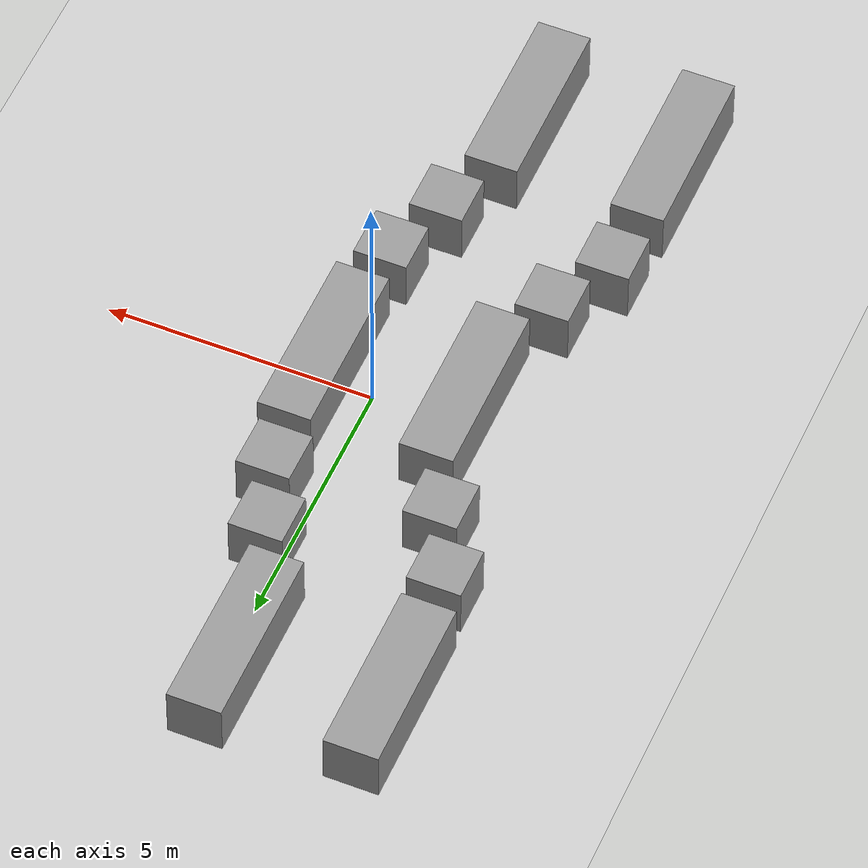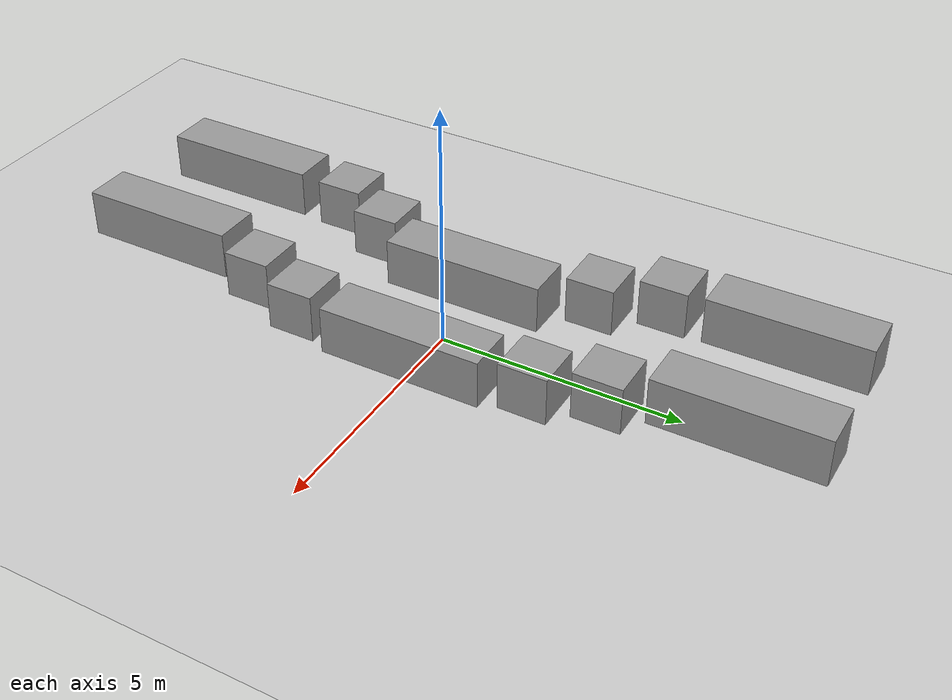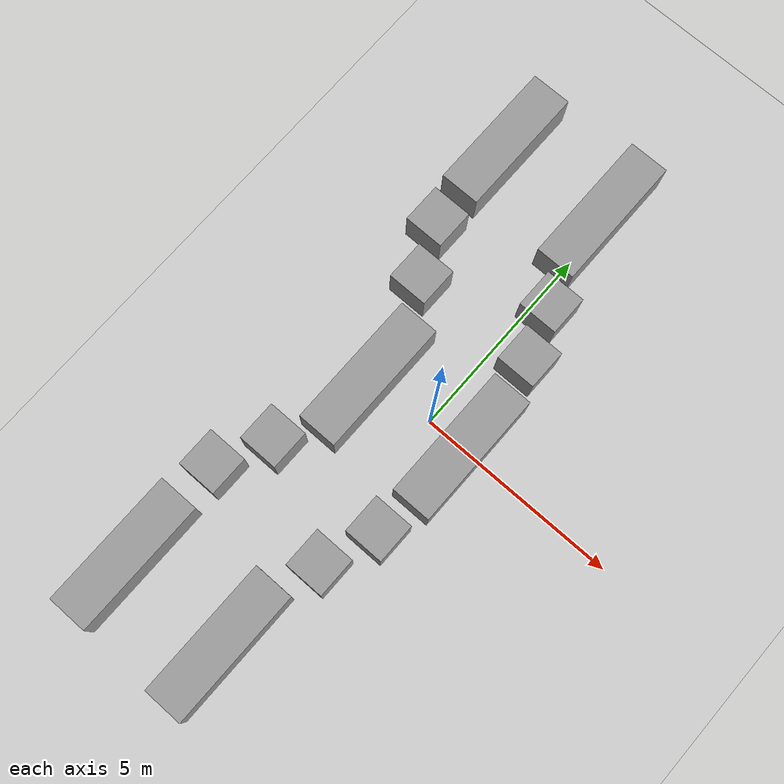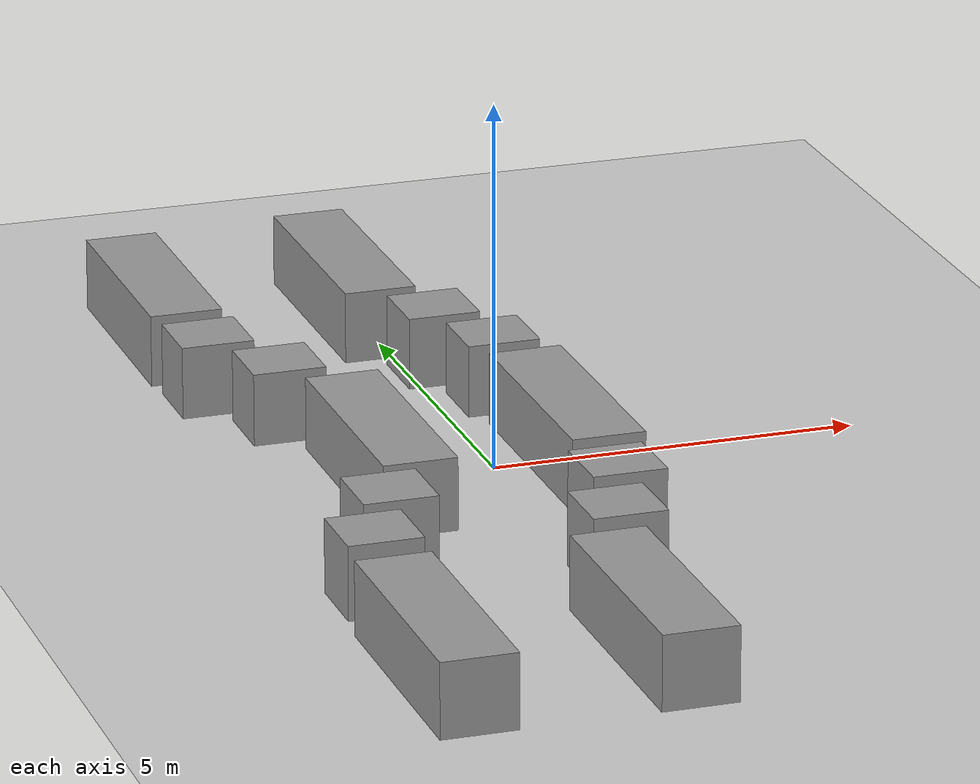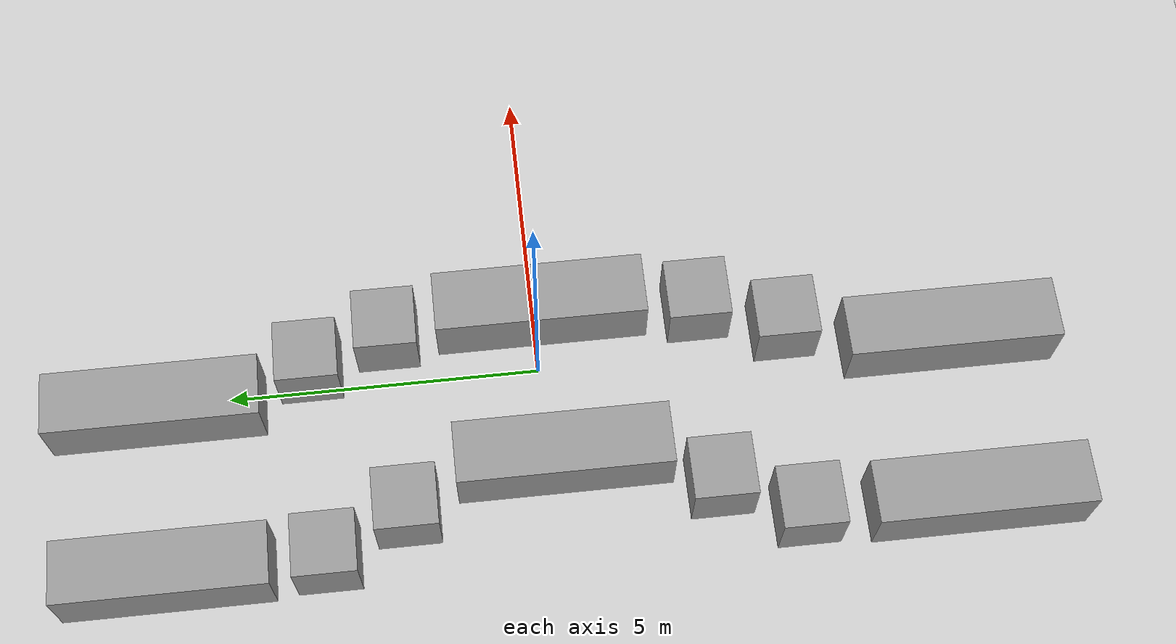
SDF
<sdf version="1.6">
 <world name="default">
  <light name="sun" type="directional">
   <pose>0 0 10 0 -0 0</pose>
   <diffuse>0.8 0.8 0.8 1</diffuse>
   <specular>0.1 0.1 0.1 1</specular>
   <attenuation>
    <range>1000</range>
    <constant>0.9</constant>
    <linear>0.01</linear>
    <quadratic>0.001</quadratic>
   </attenuation>
   <direction>-0.5 0.5 -1</direction>
  </light>
  <model name="ground_plane">
   <static>1</static>
   <link name="link">
    <collision name="collision">
     <geometry><plane><normal>0 0 1</normal><size>100 100</size></plane></geometry>
     <surface><friction><ode><mu>100</mu><mu2>50</mu2></ode></friction></surface>
    </collision>
    <visual name="visual">
     <cast_shadows>0</cast_shadows>
     <geometry><plane><normal>0 0 1</normal><size>100 100</size></plane></geometry>
     <material>
      <script><uri>file://media/materials/scripts/gazebo.material</uri><name>Gazebo/Grey</name></script>
     </material>
    </visual>
   </link>
  </model>
  <gravity>0 0 -1.62</gravity>
  <magnetic_field>6e-06 2.3e-05 -4.2e-05</magnetic_field>
  <atmosphere type="adiabatic"/>
  <physics name="default_physics" default="0" type="ode">
   <max_step_size>0.001</max_step_size>
   <real_time_factor>1</real_time_factor>
   <real_time_update_rate>1000</real_time_update_rate>
  </physics>
  <scene><ambient>0.4 0.4 0.4 1</ambient><background>0.7 0.7 0.7 1</background><shadows>1</shadows></scene>
  <spherical_coordinates>
   <surface_model>EARTH_WGS84</surface_model>
   <latitude_deg>0</latitude_deg>
   <longitude_deg>0</longitude_deg>
   <elevation>0</elevation>
   <heading_deg>0</heading_deg>
  </spherical_coordinates>
  <model name="unit_box_2">
   <pose>-2.2447 2.25959 0.499999 2e-06 -0 0</pose>
   <link name="link">
    <inertial>
     <mass>1</mass>
     <inertia>
      <ixx>0.166667</ixx>
      <ixy>0</ixy>
      <ixz>0</ixz>
      <iyy>0.166667</iyy>
      <iyz>0</iyz>
      <izz>0.166667</izz>
     </inertia>
    </inertial>
    <collision name="collision"><geometry><box><size>1 1 1</size></box></geometry></collision>
    <visual name="visual">
     <geometry><box><size>1 1 1</size></box></geometry>
     <material>
      <script><name>Gazebo/Grey</name><uri>file://media/materials/scripts/gazebo.material</uri></script>
     </material>
    </visual>
   </link>
  </model>
  <model name="unit_box_3">
   <pose>-2.85724 3.53374 0.499999 -2e-06 0 0</pose>
   <link name="link">
    <inertial>
     <mass>1</mass>
     <inertia>
      <ixx>0.166667</ixx>
      <ixy>0</ixy>
      <ixz>0</ixz>
      <iyy>0.166667</iyy>
      <iyz>0</iyz>
      <izz>0.166667</izz>
     </inertia>
    </inertial>
    <collision name="collision"><geometry><box><size>1 1 1</size></box></geometry></collision>
    <visual name="visual">
     <geometry><box><size>1 1 1</size></box></geometry>
     <material>
      <script><name>Gazebo/Grey</name><uri>file://media/materials/scripts/gazebo.material</uri></script>
     </material>
    </visual>
   </link>
  </model>
  <model name="unit_box_6">
   <pose>0.780241 2.39237 0.499999 2e-06 0 -0.004757</pose>
   <link name="link">
    <inertial>
     <mass>1</mass>
     <inertia>
      <ixx>0.166667</ixx>
      <ixy>0</ixy>
      <ixz>0</ixz>
      <iyy>0.166667</iyy>
      <iyz>0</iyz>
      <izz>0.166667</izz>
     </inertia>
    </inertial>
    <collision name="collision"><geometry><box><size>1 1 1</size></box></geometry></collision>
    <visual name="visual">
     <geometry><box><size>1 1 1</size></box></geometry>
     <material>
      <script><name>Gazebo/Grey</name><uri>file://media/materials/scripts/gazebo.material</uri></script>
     </material>
    </visual>
   </link>
  </model>
  <model name="unit_box_7">
   <pose>0.354733 3.666 0.499999 2e-06 -0 0</pose>
   <link name="link">
    <inertial>
     <mass>1</mass>
     <inertia>
      <ixx>0.166667</ixx>
      <ixy>0</ixy>
      <ixz>0</ixz>
      <iyy>0.166667</iyy>
      <iyz>0</iyz>
      <izz>0.166667</izz>
     </inertia>
    </inertial>
    <collision name="collision"><geometry><box><size>1 1 1</size></box></geometry></collision>
    <visual name="visual">
     <geometry><box><size>1 1 1</size></box></geometry>
     <material>
      <script><name>Gazebo/Grey</name><uri>file://media/materials/scripts/gazebo.material</uri></script>
     </material>
    </visual>
   </link>
  </model>
  <model name="unit_box_8_0">
   <pose>-2.91774 6.01669 0.499996 -3e-06 -0 1e-06</pose>
   <link name="link">
    <inertial>
     <mass>1</mass>
     <inertia>
      <ixx>0.166667</ixx>
      <ixy>0</ixy>
      <ixz>0</ixz>
      <iyy>0.166667</iyy>
      <iyz>0</iyz>
      <izz>0.166667</izz>
     </inertia>
    </inertial>
    <collision name="collision"><geometry><box><size>1 3.30522 1</size></box></geometry></collision>
    <visual name="visual">
     <geometry><box><size>1 3.30522 1</size></box></geometry>
     <material>
      <script><name>Gazebo/Grey</name><uri>file://media/materials/scripts/gazebo.material</uri></script>
     </material>
    </visual>
   </link>
  </model>
  <model name="unit_box_8_0_clone">
   <pose>-0.159391 6.1217 0.499995 3e-06 -0 0</pose>
   <link name="link">
    <inertial>
     <mass>1</mass>
     <inertia>
      <ixx>0.166667</ixx>
      <ixy>0</ixy>
      <ixz>0</ixz>
      <iyy>0.166667</iyy>
      <iyz>0</iyz>
      <izz>0.166667</izz>
     </inertia>
    </inertial>
    <collision name="collision"><geometry><box><size>1 3.40701 1</size></box></geometry></collision>
    <visual name="visual">
     <geometry><box><size>1 3.40701 1</size></box></geometry>
     <material>
      <script><name>Gazebo/Grey</name><uri>file://media/materials/scripts/gazebo.material</uri></script>
     </material>
    </visual>
   </link>
  </model>
  <model name="unit_box_8_0_clone_0">
   <pose>0.960109 -0.123367 0.499995 -3e-06 0 0</pose>
   <link name="link">
    <inertial>
     <mass>1</mass>
     <inertia>
      <ixx>0.166667</ixx>
      <ixy>0</ixy>
      <ixz>0</ixz>
      <iyy>0.166667</iyy>
      <iyz>0</iyz>
      <izz>0.166667</izz>
     </inertia>
    </inertial>
    <collision name="collision"><geometry><box><size>1 3.40701 1</size></box></geometry></collision>
    <visual name="visual">
     <geometry><box><size>1 3.40701 1</size></box></geometry>
     <material>
      <script><name>Gazebo/Grey</name><uri>file://media/materials/scripts/gazebo.material</uri></script>
     </material>
    </visual>
   </link>
  </model>
  <model name="unit_box_8_0_clone_1">
   <pose>-1.62519 -0.251273 0.499995 3e-06 -0 0</pose>
   <link name="link">
    <inertial>
     <mass>1</mass>
     <inertia>
      <ixx>0.166667</ixx>
      <ixy>0</ixy>
      <ixz>0</ixz>
      <iyy>0.166667</iyy>
      <iyz>0</iyz>
      <izz>0.166667</izz>
     </inertia>
    </inertial>
    <collision name="collision"><geometry><box><size>1 3.40701 1</size></box></geometry></collision>
    <visual name="visual">
     <geometry><box><size>1 3.40701 1</size></box></geometry>
     <material>
      <script><name>Gazebo/Grey</name><uri>file://media/materials/scripts/gazebo.material</uri></script>
     </material>
    </visual>
   </link>
  </model>
  <model name="unit_box_2_clone">
   <pose>-2.26252 -2.6569 0.499999 2e-06 -0 0</pose>
   <link name="link">
    <inertial>
     <mass>1</mass>
     <inertia>
      <ixx>0.166667</ixx>
      <ixy>0</ixy>
      <ixz>0</ixz>
      <iyy>0.166667</iyy>
      <iyz>0</iyz>
      <izz>0.166667</izz>
     </inertia>
    </inertial>
    <collision name="collision"><geometry><box><size>1 1 1</size></box></geometry></collision>
    <visual name="visual">
     <geometry><box><size>1 1 1</size></box></geometry>
     <material>
      <script><name>Gazebo/Grey</name><uri>file://media/materials/scripts/gazebo.material</uri></script>
     </material>
    </visual>
   </link>
  </model>
  <model name="unit_box_2_clone_0">
   <pose>0.781924 -2.66188 0.499999 -2e-06 0 0</pose>
   <link name="link">
    <inertial>
     <mass>1</mass>
     <inertia>
      <ixx>0.166667</ixx>
      <ixy>0</ixy>
      <ixz>0</ixz>
      <iyy>0.166667</iyy>
      <iyz>0</iyz>
      <izz>0.166667</izz>
     </inertia>
    </inertial>
    <collision name="collision"><geometry><box><size>1 1 1</size></box></geometry></collision>
    <visual name="visual">
     <geometry><box><size>1 1 1</size></box></geometry>
     <material>
      <script><name>Gazebo/Grey</name><uri>file://media/materials/scripts/gazebo.material</uri></script>
     </material>
    </visual>
   </link>
  </model>
  <model name="unit_box_2_clone_1">
   <pose>-2.86666 -3.94186 0.499999 -2e-06 0 0</pose>
   <link name="link">
    <inertial>
     <mass>1</mass>
     <inertia>
      <ixx>0.166667</ixx>
      <ixy>0</ixy>
      <ixz>0</ixz>
      <iyy>0.166667</iyy>
      <iyz>0</iyz>
      <izz>0.166667</izz>
     </inertia>
    </inertial>
    <collision name="collision"><geometry><box><size>1 1 1</size></box></geometry></collision>
    <visual name="visual">
     <geometry><box><size>1 1 1</size></box></geometry>
     <material>
      <script><name>Gazebo/Grey</name><uri>file://media/materials/scripts/gazebo.material</uri></script>
     </material>
    </visual>
   </link>
  </model>
  <model name="unit_box_2_clone_2">
   <pose>0.309918 -4.02773 0.499999 0 2e-06 0</pose>
   <link name="link">
    <inertial>
     <mass>1</mass>
     <inertia>
      <ixx>0.166667</ixx>
      <ixy>0</ixy>
      <ixz>0</ixz>
      <iyy>0.166667</iyy>
      <iyz>0</iyz>
      <izz>0.166667</izz>
     </inertia>
    </inertial>
    <collision name="collision"><geometry><box><size>1 1 1</size></box></geometry></collision>
    <visual name="visual">
     <geometry><box><size>1 1 1</size></box></geometry>
     <material>
      <script><name>Gazebo/Grey</name><uri>file://media/materials/scripts/gazebo.material</uri></script>
     </material>
    </visual>
   </link>
  </model>
  <model name="unit_box_8_0_clone_1_clone">
   <pose>-2.93047 -6.61529 0.499995 3e-06 -0 0</pose>
   <link name="link">
    <inertial>
     <mass>1</mass>
     <inertia>
      <ixx>0.166667</ixx>
      <ixy>0</ixy>
      <ixz>0</ixz>
      <iyy>0.166667</iyy>
      <iyz>0</iyz>
      <izz>0.166667</izz>
     </inertia>
    </inertial>
    <collision name="collision"><geometry><box><size>1 3.40701 1</size></box></geometry></collision>
    <visual name="visual">
     <geometry><box><size>1 3.40701 1</size></box></geometry>
     <material>
      <script><name>Gazebo/Grey</name><uri>file://media/materials/scripts/gazebo.material</uri></script>
     </material>
    </visual>
   </link>
  </model>
  <model name="unit_box_8_0_clone_1_clone_0">
   <pose>-0.145583 -6.64916 0.499995 3e-06 -0 0</pose>
   <link name="link">
    <inertial>
     <mass>1</mass>
     <inertia>
      <ixx>0.166667</ixx>
      <ixy>0</ixy>
      <ixz>0</ixz>
      <iyy>0.166667</iyy>
      <iyz>0</iyz>
      <izz>0.166667</izz>
     </inertia>
    </inertial>
    <collision name="collision"><geometry><box><size>1 3.40701 1</size></box></geometry></collision>
    <visual name="visual">
     <geometry><box><size>1 3.40701 1</size></box></geometry>
     <material>
      <script><name>Gazebo/Grey</name><uri>file://media/materials/scripts/gazebo.material</uri></script>
     </material>
    </visual>
   </link>
  </model>
 </world>
</sdf>
